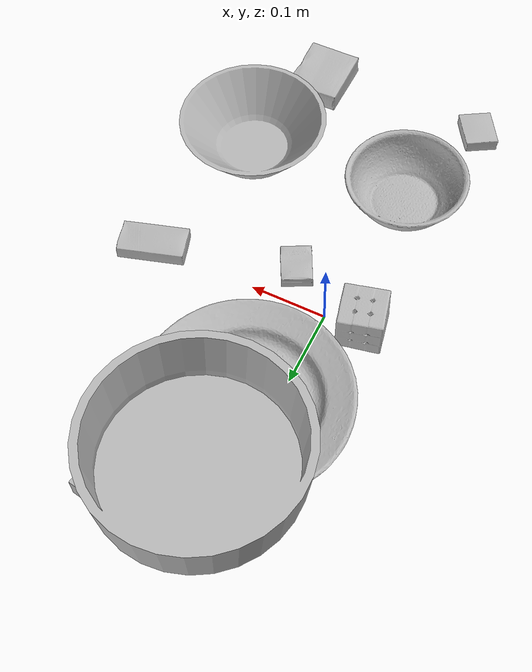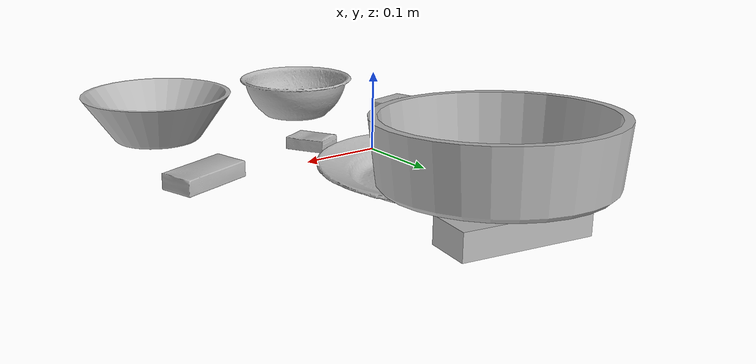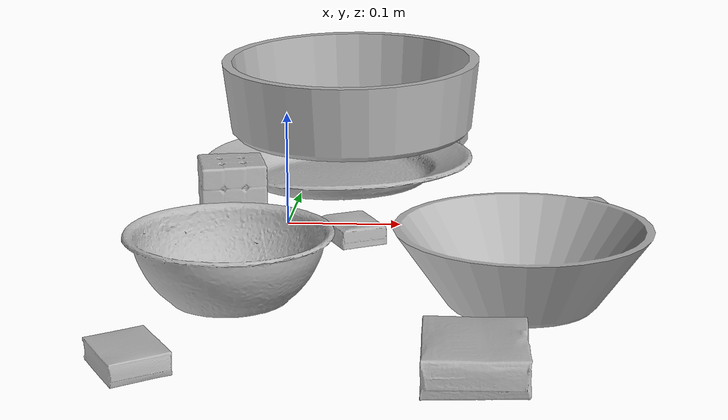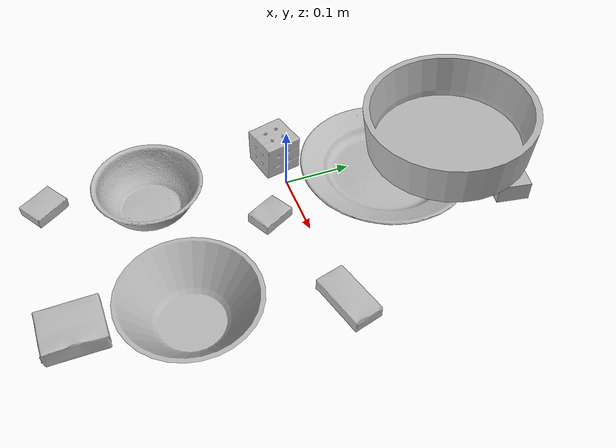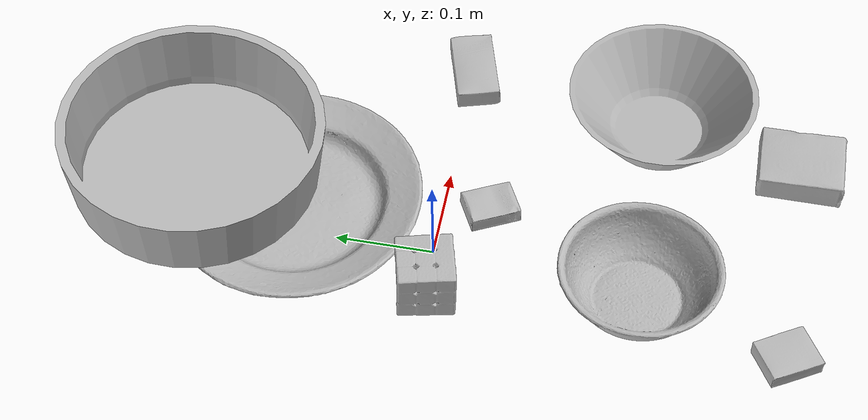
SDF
<sdf version="1.4">
  <world name="default">
    <light name="light1" type="point">
      <pose>0 0 1 0 0 0</pose>
      <diffuse>3 3 3 1</diffuse>
      <specular>3 3 3 1</specular>
    </light>
    <light name="light2" type="point">
      <pose>0 0.5 2 0 0 0</pose>
      <diffuse>1 1 1 1</diffuse>
      <specular>1 1 1 1</specular>
    </light>
    <light name="light3" type="point">
      <pose>0 0.5 2 0 0 0</pose>
      <diffuse>3 3 3 1</diffuse>
      <specular>3 3 3 1</specular>
    </light>
    <scene>
      <ambient>0.7 0.7 0.7</ambient>
    </scene>
    <model name="box1">
      <link name="link_box1">
        <collision name="default">
          <geometry>
            <mesh>
              <uri>model://jenga/collision_meshes/collision.obj</uri>
              <scale>1.0 1.0 1.0</scale>
            </mesh>
          </geometry>
          <surface>
            <friction>
              <ode>
                <mu>0.5</mu>
                <mu2>0.5</mu2>
              </ode>
            </friction>
          <contact>
        <ode>
            <max_vel>0</max_vel>
            <min_depth>0.0001</min_depth>
            <kp>1e8</kp>
        </ode>
    </contact></surface>
        </collision>
        <visual name="default">
          <geometry>
            <mesh>
              <uri>model://jenga/visual_meshes/visual.dae</uri>
              <scale>1.0 1.0 1.0</scale>
            </mesh>
          </geometry>
        </visual>
        <inertial>
          <mass>0.2830650806427002</mass>
          <pose>-2.502855807051674e-07 -0.00010250010382151231 -4.0923401684267446e-05 0.0 -7.34215461761844e-07 0.0</pose>
          <inertia>
            <ixx>7.833097e-05</ixx>
            <iyy>0.0005307686</iyy>
            <izz>0.0005666406</izz>
            <ixy>0</ixy>
            <ixz>0</ixz>
            <iyz>0</iyz>
          </inertia>
        </inertial>
      </link>
      <pose>0.07815782725811005 0.3180023431777954 0.015002142637968063 -0.0001326054117934122 1.579617974622822e-05 2.979984869730557</pose>
    </model>
    <model name="box11">
      <link name="link_box11">
        <collision name="default">
          <geometry>
            <mesh>
              <uri>model://cracker_box/collision_meshes/collision.obj</uri>
              <scale>0.25 0.25 0.25</scale>
            </mesh>
          </geometry>
          <surface>
            <friction>
              <ode>
                <mu>0.5</mu>
                <mu2>0.5</mu2>
              </ode>
            </friction>
          <contact>
        <ode>
            <max_vel>0</max_vel>
            <min_depth>0.0001</min_depth>
            <kp>1e8</kp>
        </ode>
    </contact></surface>
        </collision>
        <visual name="default">
          <geometry>
            <mesh>
              <uri>model://cracker_box/visual_meshes/visual.dae</uri>
              <scale>0.25 0.25 0.25</scale>
            </mesh>
          </geometry>
        </visual>
        <inertial>
          <mass>0.04137800261378288</mass>
          <pose>0.00023660347505938262 6.358561950037256e-05 -0.0004257383698131889 -0.00031620748486547713 -0.011106488669102847 0.002546795699546287</pose>
          <inertia>
            <ixx>6.577948e-06</ixx>
            <iyy>1.0861484e-05</iyy>
            <izz>1.5500336e-05</izz>
            <ixy>0</ixy>
            <ixz>0</ixz>
            <iyz>0</iyz>
          </inertia>
        </inertial>
      </link>
      <pose>0.061715785413980484 -0.04790625348687172 0.009096029214560986 -0.014050606490380544 -0.005016552604044565 2.046512470625604</pose>
    </model>
    <model name="box2">
      <link name="link_box2">
        <collision name="default">
          <geometry>
            <mesh>
              <uri>model://gelatin_box/collision_meshes/collision.obj</uri>
              <scale>1.0 1.0 1.0</scale>
            </mesh>
          </geometry>
          <surface>
            <friction>
              <ode>
                <mu>0.5</mu>
                <mu2>0.5</mu2>
              </ode>
            </friction>
          <contact>
        <ode>
            <max_vel>0</max_vel>
            <min_depth>0.0001</min_depth>
            <kp>1e8</kp>
        </ode>
    </contact></surface>
        </collision>
        <visual name="default">
          <geometry>
            <mesh>
              <uri>model://gelatin_box/visual_meshes/visual.dae</uri>
              <scale>1.0 1.0 1.0</scale>
            </mesh>
          </geometry>
        </visual>
        <inertial>
          <mass>0.22900472581386566</mass>
          <pose>0.000431961816502735 0.00011156871914863586 -0.0003640321083366871 -0.001050372089182411 -0.004755818223717792 0.016440559471606643</pose>
          <inertia>
            <ixx>0.00016165864</ixx>
            <iyy>0.00011547193</iyy>
            <izz>0.00024608054</izz>
            <ixy>0</ixy>
            <ixz>0</ixz>
            <iyz>0</iyz>
          </inertia>
        </inertial>
      </link>
      <pose>0.16771183907985687 -0.35526129603385925 0.01516831573098898 0.005596421470444249 -0.007303405856488429 0.0006348837038833158</pose>
    </model>
    <model name="box21">
      <link name="link_box21">
        <collision name="default">
          <geometry>
            <mesh>
              <uri>model://sugar_box/collision_meshes/collision.obj</uri>
              <scale>0.5 0.5 0.5</scale>
            </mesh>
          </geometry>
          <surface>
            <friction>
              <ode>
                <mu>0.5</mu>
                <mu2>0.5</mu2>
              </ode>
            </friction>
          <contact>
        <ode>
            <max_vel>0</max_vel>
            <min_depth>0.0001</min_depth>
            <kp>1e8</kp>
        </ode>
    </contact></surface>
        </collision>
        <visual name="default">
          <geometry>
            <mesh>
              <uri>model://sugar_box/visual_meshes/visual.dae</uri>
              <scale>0.5 0.5 0.5</scale>
            </mesh>
          </geometry>
        </visual>
        <inertial>
          <mass>0.12271630764007568</mass>
          <pose>0.0005171863595023751 1.924554817378521e-05 -0.00018182404164690524 -0.00040462595111886014 0.0010506636380741379 0.0026153785562511135</pose>
          <inertia>
            <ixx>2.5561721e-05</ixx>
            <iyy>8.262075e-05</iyy>
            <izz>9.890688e-05</izz>
            <ixy>0</ixy>
            <ixz>0</ixz>
            <iyz>0</iyz>
          </inertia>
        </inertial>
      </link>
      <pose>0.24175819754600525 0.0007804050110280514 0.011399303562939167 0.0007746787355295366 -0.023433008219891836 -2.866050067961178</pose>
    </model>
    <model name="box3">
      <link name="link_box3">
        <collision name="default">
          <geometry>
            <mesh>
              <uri>model://rubiks_cube/collision_meshes/collision.obj</uri>
              <scale>1.0 1.0 1.0</scale>
            </mesh>
          </geometry>
          <surface>
            <friction>
              <ode>
                <mu>0.5</mu>
                <mu2>0.5</mu2>
              </ode>
            </friction>
          <contact>
        <ode>
            <max_vel>0</max_vel>
            <min_depth>0.0001</min_depth>
            <kp>1e8</kp>
        </ode>
    </contact></surface>
        </collision>
        <visual name="default">
          <geometry>
            <mesh>
              <uri>model://rubiks_cube/visual_meshes/visual.dae</uri>
              <scale>1.0 1.0 1.0</scale>
            </mesh>
          </geometry>
        </visual>
        <inertial>
          <mass>0.16665811836719513</mass>
          <pose>2.6721039830590598e-05 5.256966323941015e-05 -7.264316082000732e-06 -0.05467166844566422 -0.0981397083583286 -0.034457090447706985</pose>
          <inertia>
            <ixx>9.20898e-05</ixx>
            <iyy>9.166034e-05</iyy>
            <izz>9.285292e-05</izz>
            <ixy>0</ixy>
            <ixz>0</ixz>
            <iyz>0</iyz>
          </inertia>
        </inertial>
      </link>
      <pose>-0.049421150237321854 -0.0025202517863363028 0.028678985312581062 -2.600915299483742e-06 -1.0370766940320714e-06 -2.9014914986844547</pose>
    </model>
    <model name="box31">
      <link name="link_box31">
        <collision name="default">
          <geometry>
            <mesh>
              <uri>model://pudding_box/collision_meshes/collision.obj</uri>
              <scale>0.5 0.5 0.5</scale>
            </mesh>
          </geometry>
          <surface>
            <friction>
              <ode>
                <mu>0.5</mu>
                <mu2>0.5</mu2>
              </ode>
            </friction>
          <contact>
        <ode>
            <max_vel>0</max_vel>
            <min_depth>0.0001</min_depth>
            <kp>1e8</kp>
        </ode>
    </contact></surface>
        </collision>
        <visual name="default">
          <geometry>
            <mesh>
              <uri>model://pudding_box/visual_meshes/visual.dae</uri>
              <scale>0.5 0.5 0.5</scale>
            </mesh>
          </geometry>
        </visual>
        <inertial>
          <mass>0.023591291159391403</mass>
          <pose>0.00024474109522998333 0.00040339428232982755 -0.0002594413817860186 0.00521310040348307 -0.006603797312523218 0.020079827030686108</pose>
          <inertia>
            <ixx>6.667184e-06</ixx>
            <iyy>4.4857293e-06</iyy>
            <izz>9.845841e-06</izz>
            <ixy>0</ixy>
            <ixz>0</ixz>
            <iyz>0</iyz>
          </inertia>
        </inertial>
      </link>
      <pose>-0.06628984212875366 -0.3564760386943817 0.00986290443688631 0.022348515613923894 -0.011391662148670805 0.5550558832806471</pose>
    </model>
    <model name="plate1">
      <link name="link_plate1">
        <collision name="default">
          <geometry>
            <mesh>
              <uri>model://plate/collision_meshes/collision.obj</uri>
              <scale>1.0 1.0 1.0</scale>
            </mesh>
          </geometry>
          <surface>
            <friction>
              <ode>
                <mu>0.5</mu>
                <mu2>0.5</mu2>
              </ode>
            </friction>
          <contact>
        <ode>
            <max_vel>0</max_vel>
            <min_depth>0.0001</min_depth>
            <kp>1e8</kp>
        </ode>
    </contact></surface>
        </collision>
        <visual name="default">
          <geometry>
            <mesh>
              <uri>model://plate/visual_meshes/visual.dae</uri>
              <scale>1.0 1.0 1.0</scale>
            </mesh>
          </geometry>
        </visual>
        <inertial>
          <mass>0.2114637792110443</mass>
          <pose>-0.0006044656038284302 0.0002782588708214462 -0.0010561993112787604 0.002218744002621918 -0.003225513006599694 0.45262307488796183</pose>
          <inertia>
            <ixx>0.0009892316</ixx>
            <iyy>0.0009797702</iyy>
            <izz>0.0019347895</izz>
            <ixy>0</ixy>
            <ixz>0</ixz>
            <iyz>0</iyz>
          </inertia>
        </inertial>
      </link>
      <pose>0.03190071880817413 0.14897210896015167 0.01430901512503624 0.0019233544186129002 -0.008542859579701294 -1.0266516523816316</pose>
    </model>
    <model name="bowl1">
      <link name="link_bowl1">
        <collision name="default">
          <geometry>
            <mesh>
              <uri>model://bowl_a/collision_meshes/collision.obj</uri>
              <scale>1.0 1.0 1.0</scale>
            </mesh>
          </geometry>
          <surface>
            <friction>
              <ode>
                <mu>0.5</mu>
                <mu2>0.5</mu2>
              </ode>
            </friction>
          <contact>
        <ode>
            <max_vel>0</max_vel>
            <min_depth>0.0001</min_depth>
            <kp>1e8</kp>
        </ode>
    </contact></surface>
        </collision>
        <visual name="default">
          <geometry>
            <mesh>
              <uri>model://bowl_a/visual_meshes/visual.dae</uri>
              <scale>1.0 1.0 1.0</scale>
            </mesh>
          </geometry>
        </visual>
        <inertial>
          <mass>0.48499906063079834</mass>
          <pose>0.00027867438620887697 4.731262743007392e-05 -0.0013765298062935472 -0.0009805334386135593 -0.0010938262367740986 -0.19123808511586568</pose>
          <inertia>
            <ixx>0.0013808149</ixx>
            <iyy>0.0013892918</iyy>
            <izz>0.0024558324</izz>
            <ixy>0</ixy>
            <ixz>0</ixz>
            <iyz>0</iyz>
          </inertia>
        </inertial>
      </link>
      <pose>0.20226770639419556 -0.20466236770153046 0.030382301658391953 -9.398667387164057e-06 1.2682572840411362e-05 3.0412292307708717</pose>
    </model>
    <model name="plate2">
      <link name="link_plate2">
        <collision name="default">
          <geometry>
            <mesh>
              <uri>model://pan_tefal/collision_meshes/collision.obj</uri>
              <scale>1.0 1.0 1.0</scale>
            </mesh>
          </geometry>
          <surface>
            <friction>
              <ode>
                <mu>0.5</mu>
                <mu2>0.5</mu2>
              </ode>
            </friction>
          <contact>
        <ode>
            <max_vel>0</max_vel>
            <min_depth>0.0001</min_depth>
            <kp>1e8</kp>
        </ode>
    </contact></surface>
        </collision>
        <visual name="default">
          <geometry>
            <mesh>
              <uri>model://pan_tefal/visual_meshes/visual.dae</uri>
              <scale>1.0 1.0 1.0</scale>
            </mesh>
          </geometry>
        </visual>
        <inertial>
          <mass>1.510846495628357</mass>
          <pose>-0.00018002149590756744 3.279069278505631e-05 -0.008514934219419956 0.0008190286460061649 -0.00033014112223844094 -0.3318560039733936</pose>
          <inertia>
            <ixx>0.010429303</ixx>
            <iyy>0.010496541</iyy>
            <izz>0.01919834</izz>
            <ixy>0</ixy>
            <ixz>0</ixz>
            <iyz>0</iyz>
          </inertia>
        </inertial>
      </link>
      <pose>0.0359240360558033 0.2506081163883209 0.06586562842130661 0.034956569548968766 -0.028586262208474964 0.528199135045867</pose>
    </model>
    <model name="bowl2">
      <link name="link_bowl2">
        <collision name="default">
          <geometry>
            <mesh>
              <uri>model://bowl/collision_meshes/collision.obj</uri>
              <scale>1.0 1.0 1.0</scale>
            </mesh>
          </geometry>
          <surface>
            <friction>
              <ode>
                <mu>0.5</mu>
                <mu2>0.5</mu2>
              </ode>
            </friction>
          <contact>
        <ode>
            <max_vel>0</max_vel>
            <min_depth>0.0001</min_depth>
            <kp>1e8</kp>
        </ode>
    </contact></surface>
        </collision>
        <visual name="default">
          <geometry>
            <mesh>
              <uri>model://bowl/visual_meshes/visual.dae</uri>
              <scale>1.0 1.0 1.0</scale>
            </mesh>
          </geometry>
        </visual>
        <inertial>
          <mass>0.12714597582817078</mass>
          <pose>0.0002044505235971883 -0.0010302012087777257 -0.0008042659610509872 -0.015764101160635133 0.01454679544325816 0.7140405339594252</pose>
          <inertia>
            <ixx>0.0002920644</ixx>
            <iyy>0.00028553858</iyy>
            <izz>0.0004913528</izz>
            <ixy>0</ixy>
            <ixz>0</ixz>
            <iyz>0</iyz>
          </inertia>
        </inertial>
      </link>
      <pose>-0.019703630357980728 -0.20750927925109863 0.027779998257756233 4.4952104073792165e-08 2.9321013566711475e-08 -1.9628774884616103</pose>
    </model>
  <physics type="ode">
      <max_contacts>50</max_contacts>
      <ode>
        <solver>
          <type>quick</type>
          <iters>75</iters>
        </solver>
        <constraints>
          <contact_max_correcting_vel>0</contact_max_correcting_vel>
          <contact_surface_layer>0</contact_surface_layer>
        </constraints>
      </ode>
    </physics></world>
</sdf>
